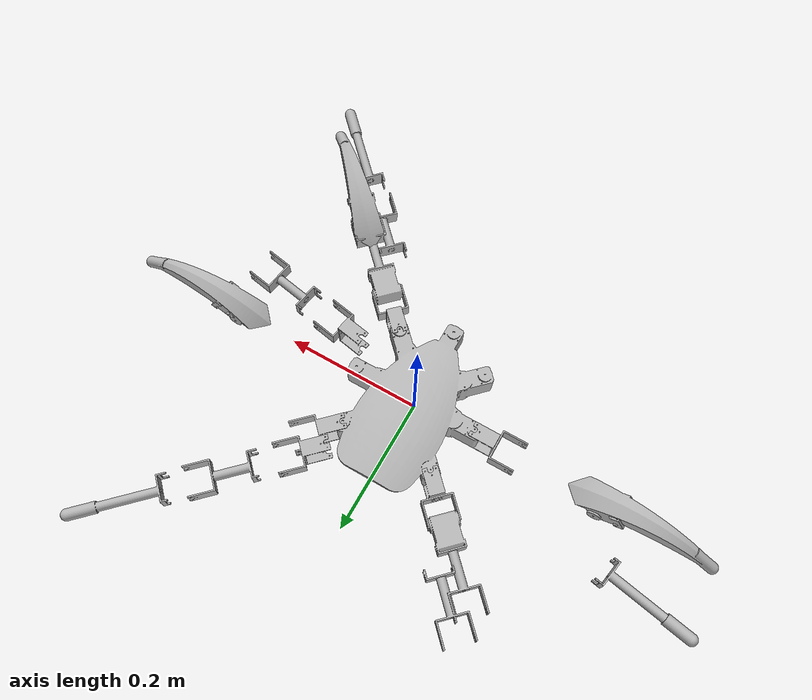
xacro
<?xml version="1.0" ?>
<robot name="nightmare" xmlns:xacro="http://www.ros.org/wiki/xacro">

<xacro:include filename="$(find nightmare_description)/urdf/materials.xacro" />
<xacro:include filename="$(find nightmare_description)/urdf/nightmare.trans" />
<xacro:include filename="$(find nightmare_description)/urdf/nightmare.gazebo" />

<link name="base_link">
</link>

<link name="body_link">
  <inertial>
    <origin rpy="0 0 0" xyz="-5.6090748801665625e-05 -0.00769173581431502 0.01843556378112976"/>
    <mass value="5.613817329636711"/>
    <inertia ixx="0.03185" ixy="2.4e-05" ixz="-4e-06" iyy="0.013431" iyz="0.000255" izz="0.04215"/>
  </inertial>
  <visual>
    <origin rpy="0 0 0" xyz="0 0 0"/>
    <geometry>
      <mesh filename="package://nightmare_description/meshes/base_link.stl" scale="0.001 0.001 0.001"/>
    </geometry>
    <material name="silver"/>
  </visual>
  <collision>
    <origin rpy="0 0 0" xyz="0 0 0"/>
    <geometry>
      <mesh filename="package://nightmare_description/meshes/base_link.stl" scale="0.001 0.001 0.001"/>
    </geometry>
  </collision>
</link>

<link name="leg_1_tibia_1">
  <inertial>
    <origin rpy="0 0 0" xyz="0.04178343647128775 0.01550414301375086 -0.024598215230103873"/>
    <mass value="0.9419903891385216"/>
    <inertia ixx="0.001888" ixy="-0.000473" ixz="0.000754" iyy="0.001914" iyz="0.000727" izz="0.001093"/>
  </inertial>
  <visual>
    <origin rpy="0 0 0" xyz="-0.107917 -0.144991 -0.120366"/>
    <geometry>
      <mesh filename="package://nightmare_description/meshes/leg_1_tibia_1.stl" scale="0.001 0.001 0.001"/>
    </geometry>
    <material name="silver"/>
  </visual>
  <collision>
    <origin rpy="0 0 0" xyz="-0.107917 -0.144991 -0.120366"/>
    <geometry>
      <mesh filename="package://nightmare_description/meshes/leg_1_tibia_1.stl" scale="0.001 0.001 0.001"/>
    </geometry>
  </collision>
</link>

<link name="leg_1_coxa_1">
  <inertial>
    <origin rpy="0 0 0" xyz="0.02419335787837043 0.023903585464848637 -0.016051474178131547"/>
    <mass value="0.35112711988344936"/>
    <inertia ixx="0.000102" ixy="-6e-06" ixz="-2e-06" iyy="0.000103" iyz="-1e-06" izz="7.7e-05"/>
  </inertial>
  <visual>
    <origin rpy="0 0 0" xyz="-0.067171 -0.079498 -0.0455"/>
    <geometry>
      <mesh filename="package://nightmare_description/meshes/leg_1_coxa_1.stl" scale="0.001 0.001 0.001"/>
    </geometry>
    <material name="silver"/>
  </visual>
  <collision>
    <origin rpy="0 0 0" xyz="-0.067171 -0.079498 -0.0455"/>
    <geometry>
      <mesh filename="package://nightmare_description/meshes/leg_1_coxa_1.stl" scale="0.001 0.001 0.001"/>
    </geometry>
  </collision>
</link>

<link name="leg_2_tibia_1">
  <inertial>
    <origin rpy="0 0 0" xyz="0.0405095296195255 -0.01741506544088068 -0.024599997325444017"/>
    <mass value="0.9420449187889018"/>
    <inertia ixx="0.001428" ixy="-1.3e-05" ixz="0.001047" iyy="0.002374" iyz="1.8e-05" izz="0.001093"/>
  </inertial>
  <visual>
    <origin rpy="0 0 0" xyz="-0.168122 -0.0165 -0.120366"/>
    <geometry>
      <mesh filename="package://nightmare_description/meshes/leg_2_tibia_1.stl" scale="0.001 0.001 0.001"/>
    </geometry>
    <material name="silver"/>
  </visual>
  <collision>
    <origin rpy="0 0 0" xyz="-0.168122 -0.0165 -0.120366"/>
    <geometry>
      <mesh filename="package://nightmare_description/meshes/leg_2_tibia_1.stl" scale="0.001 0.001 0.001"/>
    </geometry>
  </collision>
</link>

<link name="leg_2_coxa_1">
  <inertial>
    <origin rpy="0 0 0" xyz="0.03400964092586298 0.00020422845539291943 -0.01605147332435354"/>
    <mass value="0.3511271309291035"/>
    <inertia ixx="9.7e-05" ixy="-0.0" ixz="-2e-06" iyy="0.000109" iyz="-0.0" izz="7.7e-05"/>
  </inertial>
  <visual>
    <origin rpy="0 0 0" xyz="-0.093 0.0 -0.0455"/>
    <geometry>
      <mesh filename="package://nightmare_description/meshes/leg_2_coxa_1.stl" scale="0.001 0.001 0.001"/>
    </geometry>
    <material name="silver"/>
  </visual>
  <collision>
    <origin rpy="0 0 0" xyz="-0.093 0.0 -0.0455"/>
    <geometry>
      <mesh filename="package://nightmare_description/meshes/leg_2_coxa_1.stl" scale="0.001 0.001 0.001"/>
    </geometry>
  </collision>
</link>

<link name="leg_3_tibia_1">
  <inertial>
    <origin rpy="0 0 0" xyz="0.01632987875460226 -0.04095773841364264 -0.024599412902793244"/>
    <mass value="0.9420254589050608"/>
    <inertia ixx="0.001888" ixy="0.000473" ixz="0.000754" iyy="0.001914" iyz="-0.000727" izz="0.001093"/>
  </inertial>
  <visual>
    <origin rpy="0 0 0" xyz="-0.131958 0.12095 -0.120366"/>
    <geometry>
      <mesh filename="package://nightmare_description/meshes/leg_3_tibia_1.stl" scale="0.001 0.001 0.001"/>
    </geometry>
    <material name="silver"/>
  </visual>
  <collision>
    <origin rpy="0 0 0" xyz="-0.131958 0.12095 -0.120366"/>
    <geometry>
      <mesh filename="package://nightmare_description/meshes/leg_3_tibia_1.stl" scale="0.001 0.001 0.001"/>
    </geometry>
  </collision>
</link>

<link name="leg_3_coxa_1">
  <inertial>
    <origin rpy="0 0 0" xyz="0.02419335787837036 -0.023903585464848692 -0.016051474178131506"/>
    <mass value="0.35112711988344947"/>
    <inertia ixx="0.000102" ixy="6e-06" ixz="-2e-06" iyy="0.000103" iyz="1e-06" izz="7.7e-05"/>
  </inertial>
  <visual>
    <origin rpy="0 0 0" xyz="-0.067171 0.079498 -0.0455"/>
    <geometry>
      <mesh filename="package://nightmare_description/meshes/leg_3_coxa_1.stl" scale="0.001 0.001 0.001"/>
    </geometry>
    <material name="silver"/>
  </visual>
  <collision>
    <origin rpy="0 0 0" xyz="-0.067171 0.079498 -0.0455"/>
    <geometry>
      <mesh filename="package://nightmare_description/meshes/leg_3_coxa_1.stl" scale="0.001 0.001 0.001"/>
    </geometry>
  </collision>
</link>

<link name="leg_4_tibia_1">
  <inertial>
    <origin rpy="0 0 0" xyz="-0.04178509143189514 -0.01550252573635652 -0.02459941290280207"/>
    <mass value="0.9420254589050611"/>
    <inertia ixx="0.001888" ixy="-0.000473" ixz="-0.000754" iyy="0.001914" iyz="-0.000727" izz="0.001093"/>
  </inertial>
  <visual>
    <origin rpy="0 0 0" xyz="0.107917 0.144991 -0.120366"/>
    <geometry>
      <mesh filename="package://nightmare_description/meshes/leg_4_tibia_1.stl" scale="0.001 0.001 0.001"/>
    </geometry>
    <material name="silver"/>
  </visual>
  <collision>
    <origin rpy="0 0 0" xyz="0.107917 0.144991 -0.120366"/>
    <geometry>
      <mesh filename="package://nightmare_description/meshes/leg_4_tibia_1.stl" scale="0.001 0.001 0.001"/>
    </geometry>
  </collision>
</link>

<link name="leg_4_femur_1">
  <inertial>
    <origin rpy="0 0 0" xyz="-0.02693213997445433 -0.0005002719623741908 0.05329446816033774"/>
    <mass value="0.13689906161265003"/>
    <inertia ixx="0.000164" ixy="1.2e-05" ixz="3.2e-05" iyy="0.000164" iyz="3.2e-05" izz="6.7e-05"/>
  </inertial>
  <visual>
    <origin rpy="0 0 0" xyz="0.081314 0.118388 -0.017"/>
    <geometry>
      <mesh filename="package://nightmare_description/meshes/leg_4_femur_1.stl" scale="0.001 0.001 0.001"/>
    </geometry>
    <material name="silver"/>
  </visual>
  <collision>
    <origin rpy="0 0 0" xyz="0.081314 0.118388 -0.017"/>
    <geometry>
      <mesh filename="package://nightmare_description/meshes/leg_4_femur_1.stl" scale="0.001 0.001 0.001"/>
    </geometry>
  </collision>
</link>

<link name="leg_4_coxa_1">
  <inertial>
    <origin rpy="0 0 0" xyz="-0.024193357902577595 -0.02390358548632862 -0.016051473999717337"/>
    <mass value="0.3511271220544307"/>
    <inertia ixx="0.000102" ixy="-6e-06" ixz="2e-06" iyy="0.000103" iyz="1e-06" izz="7.7e-05"/>
  </inertial>
  <visual>
    <origin rpy="0 0 0" xyz="0.067171 0.079498 -0.0455"/>
    <geometry>
      <mesh filename="package://nightmare_description/meshes/leg_4_coxa_1.stl" scale="0.001 0.001 0.001"/>
    </geometry>
    <material name="silver"/>
  </visual>
  <collision>
    <origin rpy="0 0 0" xyz="0.067171 0.079498 -0.0455"/>
    <geometry>
      <mesh filename="package://nightmare_description/meshes/leg_4_coxa_1.stl" scale="0.001 0.001 0.001"/>
    </geometry>
  </collision>
</link>

<link name="leg_5_tibia_1">
  <inertial>
    <origin rpy="0 0 0" xyz="-0.040509529619527 0.018584933307422072 -0.02459999732544571"/>
    <mass value="0.9420449187889016"/>
    <inertia ixx="0.001428" ixy="1.3e-05" ixz="-0.001047" iyy="0.002374" iyz="1.8e-05" izz="0.001093"/>
  </inertial>
  <visual>
    <origin rpy="0 0 0" xyz="0.168122 0.0175 -0.120366"/>
    <geometry>
      <mesh filename="package://nightmare_description/meshes/leg_5_tibia_1.stl" scale="0.001 0.001 0.001"/>
    </geometry>
    <material name="silver"/>
  </visual>
  <collision>
    <origin rpy="0 0 0" xyz="0.168122 0.0175 -0.120366"/>
    <geometry>
      <mesh filename="package://nightmare_description/meshes/leg_5_tibia_1.stl" scale="0.001 0.001 0.001"/>
    </geometry>
  </collision>
</link>

<link name="leg_5_femur_1">
  <inertial>
    <origin rpy="0 0 0" xyz="-0.01939760292696563 0.01869071222781447 0.05329446835295956"/>
    <mass value="0.1368990938782139"/>
    <inertia ixx="0.000176" ixy="0.0" ixz="4.6e-05" iyy="0.000151" iyz="-0.0" izz="6.7e-05"/>
  </inertial>
  <visual>
    <origin rpy="0 0 0" xyz="0.1305 0.0175 -0.017"/>
    <geometry>
      <mesh filename="package://nightmare_description/meshes/leg_5_femur_1.stl" scale="0.001 0.001 0.001"/>
    </geometry>
    <material name="silver"/>
  </visual>
  <collision>
    <origin rpy="0 0 0" xyz="0.1305 0.0175 -0.017"/>
    <geometry>
      <mesh filename="package://nightmare_description/meshes/leg_5_femur_1.stl" scale="0.001 0.001 0.001"/>
    </geometry>
  </collision>
</link>

<link name="leg_5_coxa_1">
  <inertial>
    <origin rpy="0 0 0" xyz="-0.034009640942105374 0.00020422888767037946 -0.016051473831694755"/>
    <mass value="0.35112712726422335"/>
    <inertia ixx="9.7e-05" ixy="0.0" ixz="2e-06" iyy="0.000109" iyz="-0.0" izz="7.7e-05"/>
  </inertial>
  <visual>
    <origin rpy="0 0 0" xyz="0.093 0.0 -0.0455"/>
    <geometry>
      <mesh filename="package://nightmare_description/meshes/leg_5_coxa_1.stl" scale="0.001 0.001 0.001"/>
    </geometry>
    <material name="silver"/>
  </visual>
  <collision>
    <origin rpy="0 0 0" xyz="0.093 0.0 -0.0455"/>
    <geometry>
      <mesh filename="package://nightmare_description/meshes/leg_5_coxa_1.stl" scale="0.001 0.001 0.001"/>
    </geometry>
  </collision>
</link>

<link name="leg_6_tibia_1">
  <inertial>
    <origin rpy="0 0 0" xyz="-0.016328330575181238 0.040959248909850324 -0.024598215230095144"/>
    <mass value="0.9419903891385227"/>
    <inertia ixx="0.001888" ixy="0.000473" ixz="-0.000754" iyy="0.001914" iyz="0.000727" izz="0.001093"/>
  </inertial>
  <visual>
    <origin rpy="0 0 0" xyz="0.132665 -0.120243 -0.120366"/>
    <geometry>
      <mesh filename="package://nightmare_description/meshes/leg_6_tibia_1.stl" scale="0.001 0.001 0.001"/>
    </geometry>
    <material name="silver"/>
  </visual>
  <collision>
    <origin rpy="0 0 0" xyz="0.132665 -0.120243 -0.120366"/>
    <geometry>
      <mesh filename="package://nightmare_description/meshes/leg_6_tibia_1.stl" scale="0.001 0.001 0.001"/>
    </geometry>
  </collision>
</link>

<link name="leg_6_femur_1">
  <inertial>
    <origin rpy="0 0 0" xyz="-0.0007699272971616461 0.026662484639660658 0.0532944681603395"/>
    <mass value="0.13689906161264997"/>
    <inertia ixx="0.000164" ixy="-1.2e-05" ixz="3.2e-05" iyy="0.000164" iyz="-3.2e-05" izz="6.7e-05"/>
  </inertial>
  <visual>
    <origin rpy="0 0 0" xyz="0.106062 -0.09364 -0.017"/>
    <geometry>
      <mesh filename="package://nightmare_description/meshes/leg_6_femur_1.stl" scale="0.001 0.001 0.001"/>
    </geometry>
    <material name="silver"/>
  </visual>
  <collision>
    <origin rpy="0 0 0" xyz="0.106062 -0.09364 -0.017"/>
    <geometry>
      <mesh filename="package://nightmare_description/meshes/leg_6_femur_1.stl" scale="0.001 0.001 0.001"/>
    </geometry>
  </collision>
</link>

<link name="leg_6_coxa_1">
  <inertial>
    <origin rpy="0 0 0" xyz="-0.02419335787837036 0.023903585464848692 -0.01605147417813148"/>
    <mass value="0.35112711988344947"/>
    <inertia ixx="0.000102" ixy="6e-06" ixz="2e-06" iyy="0.000103" iyz="-1e-06" izz="7.7e-05"/>
  </inertial>
  <visual>
    <origin rpy="0 0 0" xyz="0.067171 -0.079498 -0.0455"/>
    <geometry>
      <mesh filename="package://nightmare_description/meshes/leg_6_coxa_1.stl" scale="0.001 0.001 0.001"/>
    </geometry>
    <material name="silver"/>
  </visual>
  <collision>
    <origin rpy="0 0 0" xyz="0.067171 -0.079498 -0.0455"/>
    <geometry>
      <mesh filename="package://nightmare_description/meshes/leg_6_coxa_1.stl" scale="0.001 0.001 0.001"/>
    </geometry>
  </collision>
</link>

<link name="leg_1_femur_1">
  <inertial>
    <origin rpy="0 0 0" xyz="0.02693213997445433 0.0005002719623741769 0.0532944681603377"/>
    <mass value="0.13689906161265003"/>
    <inertia ixx="0.000164" ixy="1.2e-05" ixz="-3.2e-05" iyy="0.000164" iyz="-3.2e-05" izz="6.7e-05"/>
  </inertial>
  <visual>
    <origin rpy="0 0 0" xyz="-0.081314 -0.118388 -0.017"/>
    <geometry>
      <mesh filename="package://nightmare_description/meshes/leg_1_femur_1.stl" scale="0.001 0.001 0.001"/>
    </geometry>
    <material name="silver"/>
  </visual>
  <collision>
    <origin rpy="0 0 0" xyz="-0.081314 -0.118388 -0.017"/>
    <geometry>
      <mesh filename="package://nightmare_description/meshes/leg_1_femur_1.stl" scale="0.001 0.001 0.001"/>
    </geometry>
  </collision>
</link>

<link name="leg_2_femur_1">
  <inertial>
    <origin rpy="0 0 0" xyz="0.019397602926964297 -0.018309286520488362 0.053294468352960034"/>
    <mass value="0.1368990938782139"/>
    <inertia ixx="0.000176" ixy="-0.0" ixz="-4.6e-05" iyy="0.000151" iyz="-0.0" izz="6.7e-05"/>
  </inertial>
  <visual>
    <origin rpy="0 0 0" xyz="-0.1305 -0.0165 -0.017"/>
    <geometry>
      <mesh filename="package://nightmare_description/meshes/leg_2_femur_1.stl" scale="0.001 0.001 0.001"/>
    </geometry>
    <material name="silver"/>
  </visual>
  <collision>
    <origin rpy="0 0 0" xyz="-0.1305 -0.0165 -0.017"/>
    <geometry>
      <mesh filename="package://nightmare_description/meshes/leg_2_femur_1.stl" scale="0.001 0.001 0.001"/>
    </geometry>
  </collision>
</link>

<link name="leg_3_femur_1">
  <inertial>
    <origin rpy="0 0 0" xyz="0.000769820515975031 -0.026662591420847162 0.053294468160339475"/>
    <mass value="0.13689906161264997"/>
    <inertia ixx="0.000164" ixy="-1.2e-05" ixz="-3.2e-05" iyy="0.000164" iyz="3.2e-05" izz="6.7e-05"/>
  </inertial>
  <visual>
    <origin rpy="0 0 0" xyz="-0.105355 0.094347 -0.017"/>
    <geometry>
      <mesh filename="package://nightmare_description/meshes/leg_3_femur_1.stl" scale="0.001 0.001 0.001"/>
    </geometry>
    <material name="silver"/>
  </visual>
  <collision>
    <origin rpy="0 0 0" xyz="-0.105355 0.094347 -0.017"/>
    <geometry>
      <mesh filename="package://nightmare_description/meshes/leg_3_femur_1.stl" scale="0.001 0.001 0.001"/>
    </geometry>
  </collision>
</link>

<link name="leg_1_tip">
  <inertial>
    <origin xyz="0 0 0" rpy="0 0 0"/>
    <mass value="0" />
    <inertia ixx="0.0" ixy="0.0" ixz="0.0" iyy="0.0" iyz="0.0" izz="0.0" />
  </inertial>
</link>

<link name="leg_2_tip">
  <inertial>
    <origin xyz="0 0 0" rpy="0 0 0"/>
    <mass value="0" />
    <inertia ixx="0.0" ixy="0.0" ixz="0.0" iyy="0.0" iyz="0.0" izz="0.0" />
  </inertial>
</link>

<link name="leg_3_tip">
  <inertial>
    <origin xyz="0 0 0" rpy="0 0 0"/>
    <mass value="0" />
    <inertia ixx="0.0" ixy="0.0" ixz="0.0" iyy="0.0" iyz="0.0" izz="0.0" />
  </inertial>
</link>

<link name="leg_4_tip">
  <inertial>
    <origin xyz="0 0 0" rpy="0 0 0"/>
    <mass value="0" />
    <inertia ixx="0.0" ixy="0.0" ixz="0.0" iyy="0.0" iyz="0.0" izz="0.0" />
  </inertial>
</link>

<link name="leg_5_tip">
  <inertial>
    <origin xyz="0 0 0" rpy="0 0 0"/>
    <mass value="0" />
    <inertia ixx="0.0" ixy="0.0" ixz="0.0" iyy="0.0" iyz="0.0" izz="0.0" />
  </inertial>
</link>

<link name="leg_6_tip">
  <inertial>
    <origin xyz="0 0 0" rpy="0 0 0"/>
    <mass value="0" />
    <inertia ixx="0.0" ixy="0.0" ixz="0.0" iyy="0.0" iyz="0.0" izz="0.0" />
  </inertial>
</link>

<joint name="base2body" type="fixed">
  <origin rpy="0 0 0" xyz="0 0 0"/>
  <parent link="base_link"/>
  <child link="body_link"/>
</joint>

<joint name="leg1tibia" type="continuous">
  <origin rpy="0 0 0" xyz="0.026603 0.026603 0.103366"/>
  <parent link="leg_1_femur_1"/>
  <child link="leg_1_tibia_1"/>
  <axis xyz="-0.707107 0.707107 0.0"/>
</joint>

<joint name="leg1coxa" type="continuous">
  <origin rpy="0 0 0" xyz="0.067171 0.079498 0.0455"/>
  <parent link="body_link"/>
  <child link="leg_1_coxa_1"/>
  <axis xyz="0.0 -0.0 -1.0"/>
</joint>

<joint name="leg2tibia" type="continuous">
  <origin rpy="0 0 0" xyz="0.037622 0.0 0.103366"/>
  <parent link="leg_2_femur_1"/>
  <child link="leg_2_tibia_1"/>
  <axis xyz="0.0 1.0 0.0"/>
</joint>

<joint name="leg2coxa" type="continuous">
  <origin rpy="0 0 0" xyz="0.093 0.0 0.0455"/>
  <parent link="body_link"/>
  <child link="leg_2_coxa_1"/>
  <axis xyz="-0.0 -0.0 -1.0"/>
</joint>

<joint name="leg3tibia" type="continuous">
  <origin rpy="0 0 0" xyz="0.026603 -0.026603 0.103366"/>
  <parent link="leg_3_femur_1"/>
  <child link="leg_3_tibia_1"/>
  <axis xyz="0.707107 0.707107 -0.0"/>
</joint>

<joint name="leg3coxa" type="continuous">
  <origin rpy="0 0 0" xyz="0.067171 -0.079498 0.0455"/>
  <parent link="body_link"/>
  <child link="leg_3_coxa_1"/>
  <axis xyz="-0.0 -0.0 -1.0"/>
</joint>

<joint name="leg4tibia" type="continuous">
  <origin rpy="0 0 0" xyz="-0.026603 -0.026603 0.103366"/>
  <parent link="leg_4_femur_1"/>
  <child link="leg_4_tibia_1"/>
  <axis xyz="0.707107 -0.707107 0.0"/>
</joint>

<joint name="leg4femur" type="continuous">
  <origin rpy="0 0 0" xyz="-0.014143 -0.03889 -0.0285"/>
  <parent link="leg_4_coxa_1"/>
  <child link="leg_4_femur_1"/>
  <axis xyz="-0.707107 0.707107 -0.0"/>
</joint>

<joint name="leg4coxa" type="continuous">
  <origin rpy="0 0 0" xyz="-0.067171 -0.079498 0.0455"/>
  <parent link="body_link"/>
  <child link="leg_4_coxa_1"/>
  <axis xyz="-0.0 0.0 -1.0"/>
</joint>

<joint name="leg5tibia" type="continuous">
  <origin rpy="0 0 0" xyz="-0.037622 0.0 0.103366"/>
  <parent link="leg_5_femur_1"/>
  <child link="leg_5_tibia_1"/>
  <axis xyz="0.0 -1.0 -0.0"/>
</joint>

<joint name="leg5femur" type="continuous">
  <origin rpy="0 0 0" xyz="-0.0375 -0.0175 -0.0285"/>
  <parent link="leg_5_coxa_1"/>
  <child link="leg_5_femur_1"/>
  <axis xyz="-0.0 1.0 0.0"/>
</joint>

<joint name="leg5coxa" type="continuous">
  <origin rpy="0 0 0" xyz="-0.093 0.0 0.0455"/>
  <parent link="body_link"/>
  <child link="leg_5_coxa_1"/>
  <axis xyz="-0.0 0.0 -1.0"/>
</joint>

<joint name="leg6tibia" type="continuous">
  <origin rpy="0 0 0" xyz="-0.026603 0.026603 0.103366"/>
  <parent link="leg_6_femur_1"/>
  <child link="leg_6_tibia_1"/>
  <axis xyz="-0.707107 -0.707107 -0.0"/>
</joint>

<joint name="leg6femur" type="continuous">
  <origin rpy="0 0 0" xyz="-0.038891 0.014142 -0.0285"/>
  <parent link="leg_6_coxa_1"/>
  <child link="leg_6_femur_1"/>
  <axis xyz="0.707107 0.707107 -0.0"/>
</joint>

<joint name="leg6coxa" type="continuous">
  <origin rpy="0 0 0" xyz="-0.067171 0.079498 0.0455"/>
  <parent link="body_link"/>
  <child link="leg_6_coxa_1"/>
  <axis xyz="0.0 0.0 -1.0"/>
</joint>

<joint name="leg1femur" type="continuous">
  <origin rpy="0 0 0" xyz="0.014143 0.03889 -0.0285"/>
  <parent link="leg_1_coxa_1"/>
  <child link="leg_1_femur_1"/>
  <axis xyz="0.707107 -0.707107 -0.0"/>
</joint>

<joint name="leg2femur" type="continuous">
  <origin rpy="0 0 0" xyz="0.0375 0.0165 -0.0285"/>
  <parent link="leg_2_coxa_1"/>
  <child link="leg_2_femur_1"/>
  <axis xyz="0.0 -1.0 0.0"/>
</joint>

<joint name="leg3femur" type="continuous">
  <origin rpy="0 0 0" xyz="0.038184 -0.014849 -0.0285"/>
  <parent link="leg_3_coxa_1"/>
  <child link="leg_3_femur_1"/>
  <axis xyz="-0.707107 -0.707107 -0.0"/>
</joint>

<joint name="leg1tip" type="fixed">
  <origin rpy="0 0 0" xyz="0.083143 0.055315 -0.13882"/>
  <parent link="leg_1_tibia_1"/>
  <child link="leg_1_tip"/>
</joint>

<joint name="leg2tip" type="fixed">
  <origin rpy="0 0 0" xyz="0.098086 -0.016834 -0.13945"/>
  <parent link="leg_2_tibia_1"/>
  <child link="leg_2_tip"/>
</joint>

<joint name="leg3tip" type="fixed">
  <origin rpy="0 0 0" xyz="0.057977 -0.080731 -0.13799"/>
  <parent link="leg_3_tibia_1"/>
  <child link="leg_3_tip"/>
</joint>

<joint name="leg4tip" type="fixed">
  <origin rpy="0 0 0" xyz="-0.083143 -0.055315 -0.13882"/>
  <parent link="leg_4_tibia_1"/>
  <child link="leg_4_tip"/>
</joint>

<joint name="leg5tip" type="fixed">
  <origin rpy="0 0 0" xyz="-0.098086 0.016834 -0.13945"/>
  <parent link="leg_5_tibia_1"/>
  <child link="leg_5_tip"/>
</joint>

<joint name="leg6tip" type="fixed">
  <origin rpy="0 0 0" xyz="-0.057977 0.080731 -0.13799"/>
  <parent link="leg_6_tibia_1"/>
  <child link="leg_6_tip"/>
</joint>

</robot>

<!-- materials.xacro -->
<robot name="nightmare" xmlns:xacro="http://www.ros.org/wiki/xacro" >

<material name="silver">
  <color rgba="0.700 0.700 0.700 1.000"/>
</material>

</robot>

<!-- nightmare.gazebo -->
<robot name="nightmare" xmlns:xacro="http://www.ros.org/wiki/xacro" >

<xacro:property name="body_color" value="Gazebo/Silver" />

<gazebo>
  <plugin filename="libgazebo_ros_control.so" name="control"/>
</gazebo>
<gazebo reference="base_link">
  <material>${body_color}</material>
  <mu1>0.2</mu1>
  <mu2>0.2</mu2>
  <selfCollide>true</selfCollide>
  <gravity>true</gravity>
</gazebo>

<gazebo reference="leg_1_tibia_1">
  <material>${body_color}</material>
  <mu1>0.2</mu1>
  <mu2>0.2</mu2>
  <selfCollide>true</selfCollide>
</gazebo>

<gazebo reference="leg_1_coxa_1">
  <material>${body_color}</material>
  <mu1>0.2</mu1>
  <mu2>0.2</mu2>
  <selfCollide>true</selfCollide>
</gazebo>

<gazebo reference="leg_2_tibia_1">
  <material>${body_color}</material>
  <mu1>0.2</mu1>
  <mu2>0.2</mu2>
  <selfCollide>true</selfCollide>
</gazebo>

<gazebo reference="leg_2_coxa_1">
  <material>${body_color}</material>
  <mu1>0.2</mu1>
  <mu2>0.2</mu2>
  <selfCollide>true</selfCollide>
</gazebo>

<gazebo reference="leg_3_tibia_1">
  <material>${body_color}</material>
  <mu1>0.2</mu1>
  <mu2>0.2</mu2>
  <selfCollide>true</selfCollide>
</gazebo>

<gazebo reference="leg_3_coxa_1">
  <material>${body_color}</material>
  <mu1>0.2</mu1>
  <mu2>0.2</mu2>
  <selfCollide>true</selfCollide>
</gazebo>

<gazebo reference="leg_4_tibia_1">
  <material>${body_color}</material>
  <mu1>0.2</mu1>
  <mu2>0.2</mu2>
  <selfCollide>true</selfCollide>
</gazebo>

<gazebo reference="leg_4_femur_1">
  <material>${body_color}</material>
  <mu1>0.2</mu1>
  <mu2>0.2</mu2>
  <selfCollide>true</selfCollide>
</gazebo>

<gazebo reference="leg_4_coxa_1">
  <material>${body_color}</material>
  <mu1>0.2</mu1>
  <mu2>0.2</mu2>
  <selfCollide>true</selfCollide>
</gazebo>

<gazebo reference="leg_5_tibia_1">
  <material>${body_color}</material>
  <mu1>0.2</mu1>
  <mu2>0.2</mu2>
  <selfCollide>true</selfCollide>
</gazebo>

<gazebo reference="leg_5_femur_1">
  <material>${body_color}</material>
  <mu1>0.2</mu1>
  <mu2>0.2</mu2>
  <selfCollide>true</selfCollide>
</gazebo>

<gazebo reference="leg_5_coxa_1">
  <material>${body_color}</material>
  <mu1>0.2</mu1>
  <mu2>0.2</mu2>
  <selfCollide>true</selfCollide>
</gazebo>

<gazebo reference="leg_6_tibia_1">
  <material>${body_color}</material>
  <mu1>0.2</mu1>
  <mu2>0.2</mu2>
  <selfCollide>true</selfCollide>
</gazebo>

<gazebo reference="leg_6_femur_1">
  <material>${body_color}</material>
  <mu1>0.2</mu1>
  <mu2>0.2</mu2>
  <selfCollide>true</selfCollide>
</gazebo>

<gazebo reference="leg_6_coxa_1">
  <material>${body_color}</material>
  <mu1>0.2</mu1>
  <mu2>0.2</mu2>
  <selfCollide>true</selfCollide>
</gazebo>

<gazebo reference="leg_1_femur_1">
  <material>${body_color}</material>
  <mu1>0.2</mu1>
  <mu2>0.2</mu2>
  <selfCollide>true</selfCollide>
</gazebo>

<gazebo reference="leg_2_femur_1">
  <material>${body_color}</material>
  <mu1>0.2</mu1>
  <mu2>0.2</mu2>
  <selfCollide>true</selfCollide>
</gazebo>

<gazebo reference="leg_3_femur_1">
  <material>${body_color}</material>
  <mu1>0.2</mu1>
  <mu2>0.2</mu2>
  <selfCollide>true</selfCollide>
</gazebo>

</robot>
